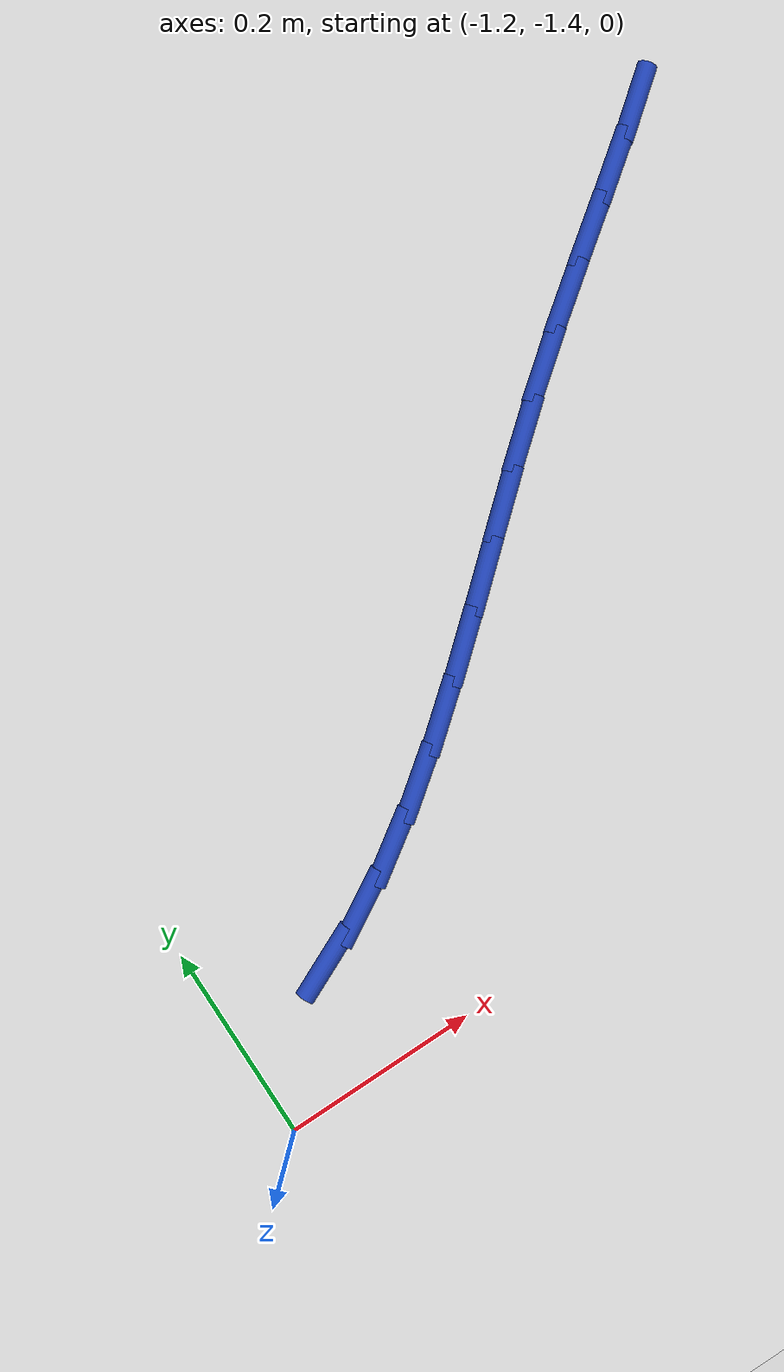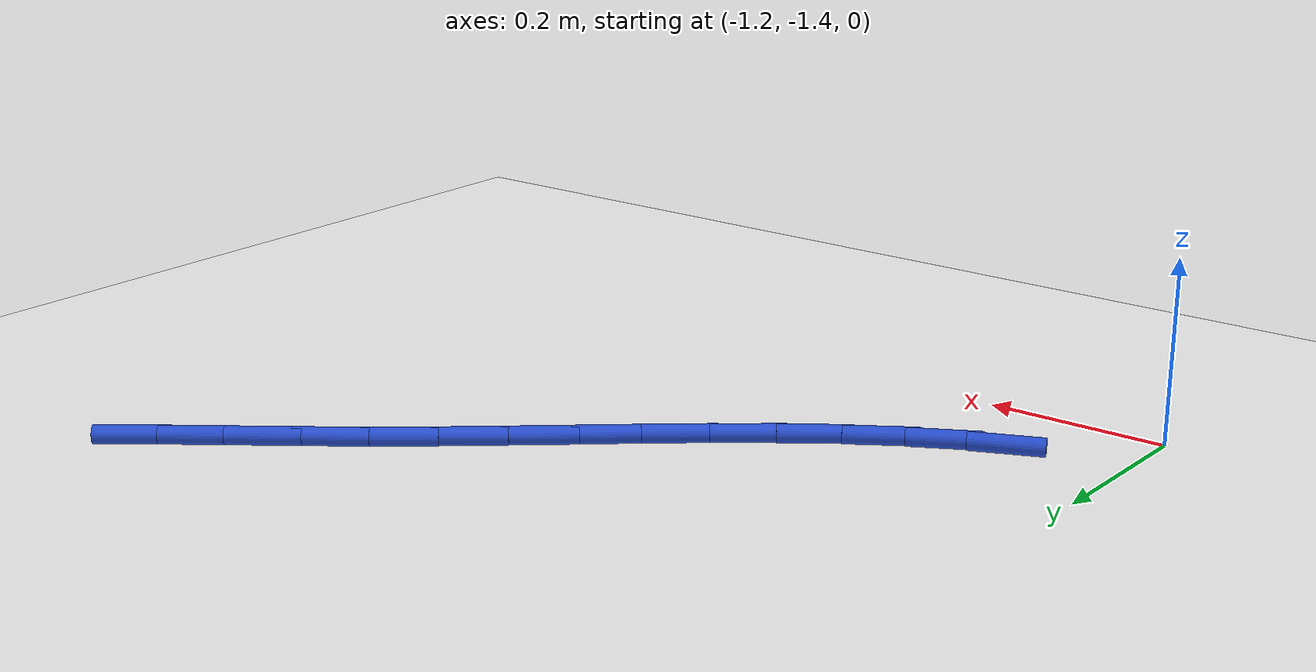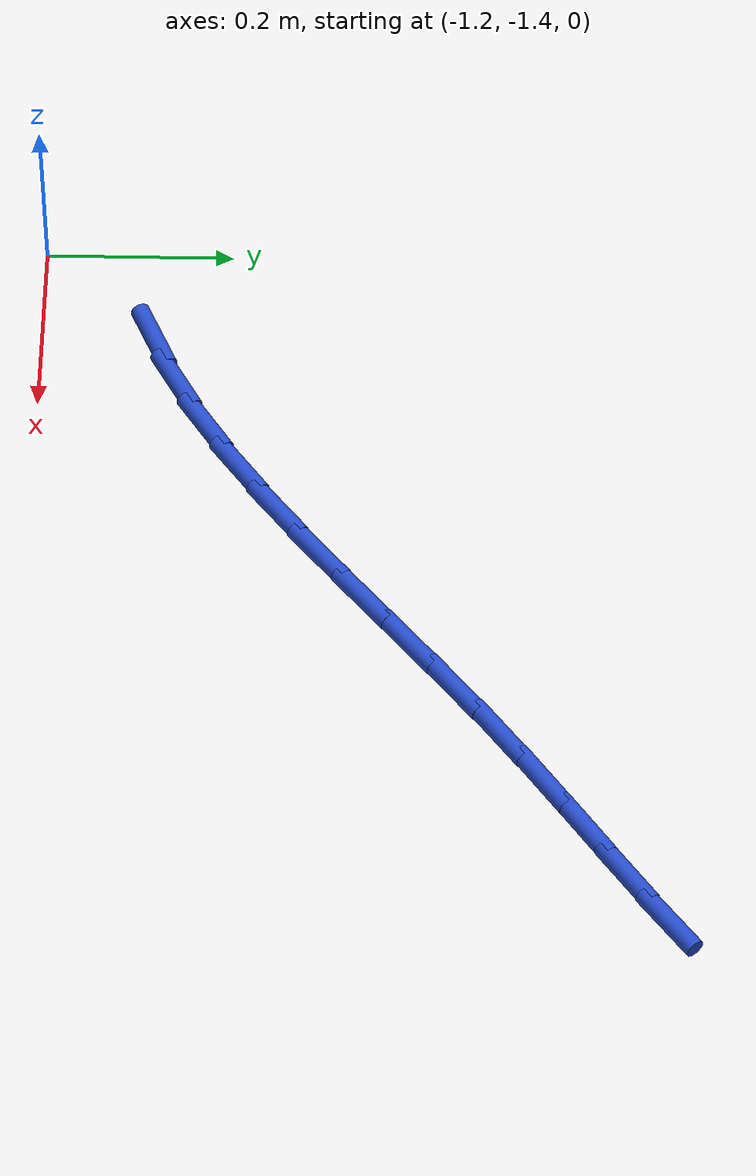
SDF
<sdf version="1.6">
 <world name="default">
  <model name="ground_plane">
   <static>1</static>
   <link name="link">
    <collision name="collision">
     <geometry><plane><normal>0 0 1</normal><size>100 100</size></plane></geometry>
     <surface><friction><ode><mu>100</mu><mu2>50</mu2></ode></friction></surface>
    </collision>
    <visual name="visual">
     <cast_shadows>0</cast_shadows>
     <geometry><plane><normal>0 0 1</normal><size>100 100</size></plane></geometry>
     <material>
      <script><uri>file://media/materials/scripts/gazebo.material</uri><name>Gazebo/WhiteGlow</name></script>
     </material>
    </visual>
   </link>
  </model>
  <model name="line">
   <link name="link_84">
    <pose>-1.0832024083437037 -1.280719720739112 0.01 0 1.57 0.42901369714212334</pose>
    <collision name="collision">
     <geometry><cylinder><radius>0.01</radius><length>0.08</length></cylinder></geometry>
    </collision>
    <visual name="visual">
     <material>
      <script><name>Gazebo/Blue</name><uri>file://media/materials/scripts/gazebo.material</uri></script>
     </material>
     <geometry><cylinder><radius>0.01</radius><length>0.08</length></cylinder></geometry>
    </visual>
   </link>
   <link name="link_85">
    <pose>-1.026205313271098 -1.2546476644947697 0.01 0 1.57 0.5227898576914476</pose>
    <collision name="collision">
     <geometry><cylinder><radius>0.01</radius><length>0.08</length></cylinder></geometry>
    </collision>
    <visual name="visual">
     <material>
      <script><name>Gazebo/Blue</name><uri>file://media/materials/scripts/gazebo.material</uri></script>
     </material>
     <geometry><cylinder><radius>0.01</radius><length>0.08</length></cylinder></geometry>
    </visual>
   </link>
   <link name="link_86">
    <pose>-0.9701350308290057 -1.2223359186234177 0.01 0 1.57 0.59526069167639</pose>
    <collision name="collision">
     <geometry><cylinder><radius>0.01</radius><length>0.08</length></cylinder></geometry>
    </collision>
    <visual name="visual">
     <material>
      <script><name>Gazebo/Blue</name><uri>file://media/materials/scripts/gazebo.material</uri></script>
     </material>
     <geometry><cylinder><radius>0.01</radius><length>0.08</length></cylinder></geometry>
    </visual>
   </link>
   <link name="link_87">
    <pose>-0.9148034444316189 -1.184865272423758 0.01 0 1.57 0.6488883984680827</pose>
    <collision name="collision">
     <geometry><cylinder><radius>0.01</radius><length>0.08</length></cylinder></geometry>
    </collision>
    <visual name="visual">
     <material>
      <script><name>Gazebo/Blue</name><uri>file://media/materials/scripts/gazebo.material</uri></script>
     </material>
     <geometry><cylinder><radius>0.01</radius><length>0.08</length></cylinder></geometry>
    </visual>
   </link>
   <link name="link_88">
    <pose>-0.860022437493133 -1.1433165151944948 0.01 0 1.57 0.6859695984301899</pose>
    <collision name="collision">
     <geometry><cylinder><radius>0.01</radius><length>0.08</length></cylinder></geometry>
    </collision>
    <visual name="visual">
     <material>
      <script><name>Gazebo/Blue</name><uri>file://media/materials/scripts/gazebo.material</uri></script>
     </material>
     <geometry><cylinder><radius>0.01</radius><length>0.08</length></cylinder></geometry>
    </visual>
   </link>
   <link name="link_89">
    <pose>-0.8056038934277407 -1.0987704362343307 0.01 0 1.57 0.7082816828129261</pose>
    <collision name="collision">
     <geometry><cylinder><radius>0.01</radius><length>0.08</length></cylinder></geometry>
    </collision>
    <visual name="visual">
     <material>
      <script><name>Gazebo/Blue</name><uri>file://media/materials/scripts/gazebo.material</uri></script>
     </material>
     <geometry><cylinder><radius>0.01</radius><length>0.08</length></cylinder></geometry>
    </visual>
   </link>
   <link name="link_90">
    <pose>-0.7513596956496371 -1.0523078248419697 0.01 0 1.57 0.71697554680273</pose>
    <collision name="collision">
     <geometry><cylinder><radius>0.01</radius><length>0.08</length></cylinder></geometry>
    </collision>
    <visual name="visual">
     <material>
      <script><name>Gazebo/Blue</name><uri>file://media/materials/scripts/gazebo.material</uri></script>
     </material>
     <geometry><cylinder><radius>0.01</radius><length>0.08</length></cylinder></geometry>
    </visual>
   </link>
   <link name="link_91">
    <pose>-0.6971017275730146 -1.0050094703161139 0.01 0 1.57 0.71256577814961</pose>
    <collision name="collision">
     <geometry><cylinder><radius>0.01</radius><length>0.08</length></cylinder></geometry>
    </collision>
    <visual name="visual">
     <material>
      <script><name>Gazebo/Blue</name><uri>file://media/materials/scripts/gazebo.material</uri></script>
     </material>
     <geometry><cylinder><radius>0.01</radius><length>0.08</length></cylinder></geometry>
    </visual>
   </link>
   <link name="link_92">
    <pose>-0.6426418726120685 -0.9579561619554682 0.01 0 1.57 0.6949454443132664</pose>
    <collision name="collision">
     <geometry><cylinder><radius>0.01</radius><length>0.08</length></cylinder></geometry>
    </collision>
    <visual name="visual">
     <material>
      <script><name>Gazebo/Blue</name><uri>file://media/materials/scripts/gazebo.material</uri></script>
     </material>
     <geometry><cylinder><radius>0.01</radius><length>0.08</length></cylinder></geometry>
    </visual>
   </link>
   <link name="link_93">
    <pose>-0.5877920141809914 -0.9122286890587341 0.01 0 1.57 0.6672961969736245</pose>
    <collision name="collision">
     <geometry><cylinder><radius>0.01</radius><length>0.08</length></cylinder></geometry>
    </collision>
    <visual name="visual">
     <material>
      <script><name>Gazebo/Blue</name><uri>file://media/materials/scripts/gazebo.material</uri></script>
     </material>
     <geometry><cylinder><radius>0.01</radius><length>0.08</length></cylinder></geometry>
    </visual>
   </link>
   <link name="link_94">
    <pose>-0.5324759847194389 -0.8686472537874206 0.01 0 1.57 0.6476869126648708</pose>
    <collision name="collision">
     <geometry><cylinder><radius>0.01</radius><length>0.08</length></cylinder></geometry>
    </collision>
    <visual name="visual">
     <material>
      <script><name>Gazebo/Blue</name><uri>file://media/materials/scripts/gazebo.material</uri></script>
     </material>
     <geometry><cylinder><radius>0.01</radius><length>0.08</length></cylinder></geometry>
    </visual>
   </link>
   <link name="link_95">
    <pose>-0.47715098547386126 -0.8267905195771688 0.01 0 1.57 0.6421446458225882</pose>
    <collision name="collision">
     <geometry><cylinder><radius>0.01</radius><length>0.08</length></cylinder></geometry>
    </collision>
    <visual name="visual">
     <material>
      <script><name>Gazebo/Blue</name><uri>file://media/materials/scripts/gazebo.material</uri></script>
     </material>
     <geometry><cylinder><radius>0.01</radius><length>0.08</length></cylinder></geometry>
    </visual>
   </link>
   <link name="link_96">
    <pose>-0.4224328899345927 -0.7858678036757867 0.01 0 1.57 0.6513265174543102</pose>
    <collision name="collision">
     <geometry><cylinder><radius>0.01</radius><length>0.08</length></cylinder></geometry>
    </collision>
    <visual name="visual">
     <material>
      <script><name>Gazebo/Blue</name><uri>file://media/materials/scripts/gazebo.material</uri></script>
     </material>
     <geometry><cylinder><radius>0.01</radius><length>0.08</length></cylinder></geometry>
    </visual>
   </link>
   <link name="link_97">
    <pose>-0.3689375979788366 -0.7450883619095635 0.01 0 1.57 0.675939565053141</pose>
    <collision name="collision">
     <geometry><cylinder><radius>0.01</radius><length>0.08</length></cylinder></geometry>
    </collision>
    <visual name="visual">
     <material>
      <script><name>Gazebo/Blue</name><uri>file://media/materials/scripts/gazebo.material</uri></script>
     </material>
     <geometry><cylinder><radius>0.01</radius><length>0.08</length></cylinder></geometry>
    </visual>
   </link>
  </model>
 </world>
</sdf>
